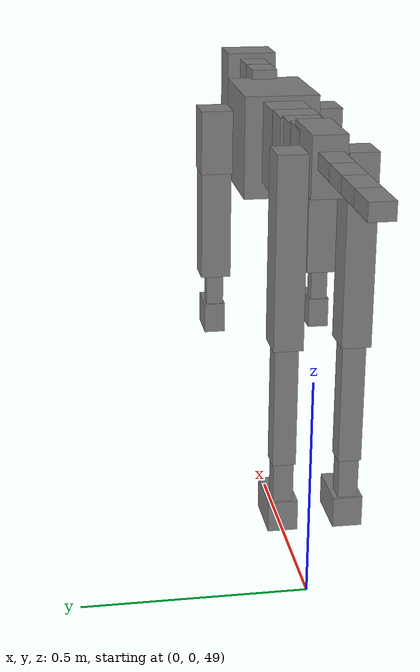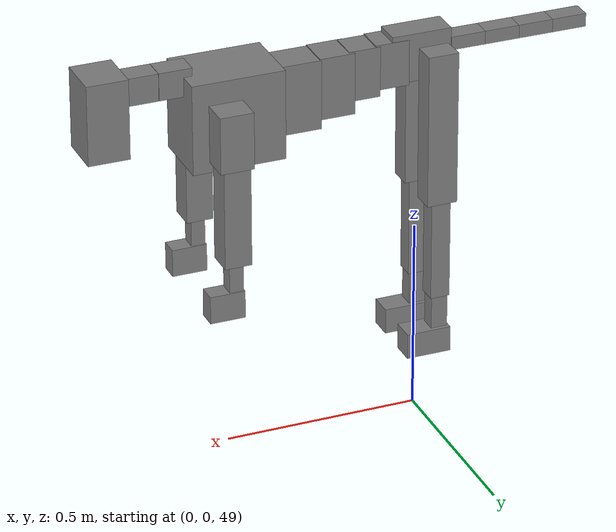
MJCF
<mujoco model="dog">

    <default>
        <joint armature="0.02" stiffness="1" damping="0.2" limited="true"/>
        <geom condim="3" friction="1 0.05 0.05" margin="0.01"/>
        <motor ctrllimited="true" ctrlrange="-1.0 1.0" forcelimited="true" gear="50"/>
    </default>

    <compiler inertiafromgeom="true" angle="radian"/>

    <option timestep="0.016" iterations="50" tolerance="1e-10" solver="Newton" jacobian="dense" cone="pyramidal"/>

    <size nconmax="20000" njmax="60000" nstack="5000000"/>
    <visual>
        <map force="0.1" zfar="30"/>
        <rgba haze="0.15 0.25 0.35 1"/>
        <quality shadowsize="2048"/>
        <global offwidth="800" offheight="800"/>
    </visual>

    <asset>
        <texture type="skybox" builtin="gradient" rgb1="0.3 0.5 0.7" rgb2="0 0 0" width="512" height="512"/>
        <texture name="texplane" type="2d" builtin="checker" rgb1=".2 .3 .4" rgb2=".1 0.15 0.2" width="512" height="512"
                 mark="cross" markrgb=".8 .8 .8"/>
        <texture name="texgeom" type="cube" builtin="flat" mark="cross" width="127" height="1278" rgb1="0.8 0.6 0.4"
                 rgb2="0.8 0.6 0.4" markrgb="1 1 1" random="0.01"/>

        <material name="matplane" reflectance="0.3" texture="texplane" texrepeat="1 1" texuniform="true"/>
        <material name="matgeom" texture="texgeom" texuniform="true" rgba="0.8 0.6 .4 1"/>
    </asset>

    <worldbody>
        <geom name="floor" pos="0 0 0" size="0 0 .25" type="plane" material="matplane" condim="3"/>

        <light directional="false" diffuse=".2 .2 .2" specular="0 0 0" pos="0 0 5" dir="0 0 -1" castshadow="false"/>
        <light mode="targetbodycom" target="torso" directional="false" diffuse=".8 .8 .8" specular="0.3 0.3 0.3"
               pos="0 0 4.0" dir="0 0 -1"/>

        <body name="root" pos="0 0 50">
            <freejoint name="root_1"/>
            <geom type="box" pos="0 0 -0.02" size="0.0774  0.0358  0.063" density="2030"/>

            <body name="spine1" pos="0.054 0 0">
                <joint name="spine1_y" axis="0 1 0" range="0 0.7" limited="true"/>
                <geom type="box" pos="0.02375 0 -0.03" size="0.04375  0.0375  0.05985" density="2030"/>

                <body name="spine2" pos="0.0612 0 0">
                    <joint name="spine2_y" axis="0 1 0" range="-0.15 0.15" limited="true"/>
                    <geom type="box" pos="0.03555  0  -0.04" size="0.04055  0.039  0.06615" density="2030"/>

                    <body name="spine3" pos="0.0730 0 0">
                        <joint name="spine3_y" axis="0 1 0" range="-0.15 0.15" limited="true"/>
                        <geom type="box" pos="0.03555  0  -0.057" size="0.04555  0.0445  0.081" density="2030"/>

                        <body name="spine4" pos="0.0780 0 0">
                            <joint name="spine4_y" axis="0 1 0" range="-0.15 0.15" limited="true"/>
                            <geom type="box" pos="0.05265  0  -0.07" size="0.05265  0.045  0.09135" density="2030"/>

                            <body name="torso" pos="0.1082 0 0">
                                <joint name="torso_y" axis="0 1 0" range="-0.15 0.15" limited="true"/>
                                <geom type="box" pos="0.11925  0  -0.085" size="0.11925  0.085  0.11745"
                                      density="2030"/>

                                <body name="neck1" pos="0.2160  0   0.0180">
                                    <joint name="neck1_y" axis="0 1 0" range="-1.2  -1" limited="true"/>
                                    <geom type="box" pos="0.0423  0  0" size="0.0423  0.03  0.036" density="2325"/>

                                    <body name="neck2" pos="0.0853  0  0">
                                        <joint name="neck2_y" axis="0 1 0" range="0.1  0" limited="true"/>
                                        <geom type="box" pos="0.0423  0  0" size="0.0423  0.03  0.036" density="2325"/>

                                        <body name="head" pos="0.0853  0  0">
                                            <joint name="head_y" axis="0 1 0" range="-0.3  -0.2" limited="true"/>
                                            <geom type="box" pos="0.0531  0  -0.055" size="0.0531  0.06  0.1044"
                                                  density="4030"/>

                                        </body>
                                    </body>
                                </body>

                                <body name="front_shoulder" pos="0.156  0   -0.0480">
                                    <joint name="front_shoulder_y" axis="0 1 0" range="-1 1.5" limited="true"/>
                                    <geom type="box" pos="0 0.13 -0.0476" size="0.0431  0.0369  0.0743" density="1158"/>
                                    <geom type="box" pos="0 -0.13 -0.0476" size="0.0431  0.0369  0.0743"
                                          density="1158"/>

                                    <body name="front_elbow" pos="0  0  -0.0953">
                                        <joint name="front_elbow_y" axis="0 1 0" range="-2 0" limited="true"/>
                                        <geom type="box" pos="0 0.13 -0.1418" size="0.0346  0.0354  0.1418"
                                              density="1081"/>
                                        <geom type="box" pos="0 -0.13 -0.1418" size="0.0346  0.0354  0.1418"
                                              density="1081"/>

                                        <body name="front_wrist" pos="0  0  -0.2837">
                                            <joint name="front_wrist_y" axis="0 1 0" range="-0.2 0" limited="true"/>
                                            <geom type="box" pos="0 0.13 -0.0443" size="0.0182  0.0202  0.0575"
                                                  density="1664"/>
                                            <geom type="box" pos="0 -0.13 -0.0443" size="0.0182  0.0202  0.0575"
                                                  density="1664"/>

                                            <body name="front_finger_end" pos="0  0  -0.0887">
                                                <joint name="front_finger_y" axis="0 1 0" range="-0.4 1"
                                                       limited="true"/>
                                                <geom type="box" pos="0.0246  0.13  -0.0212"
                                                      size="0.0452  0.0246  0.0362" density="1515"/>
                                                <geom type="box" pos="0.0246  -0.13  -0.0212"
                                                      size="0.0452  0.0246  0.0362" density="1515"/>

                                            </body>

                                        </body>
                                    </body>
                                </body>

                            </body>
                        </body>
                    </body>
                </body>
            </body>

            <body name="back_hip" pos="-0.03 0 -0.018">
                <joint name="back_hip_y" axis="0 1 0" range="-1.5 0.3" limited="true"/>
                <geom type="box" pos="0 0.07 -0.1789" size="0.0393  0.0309  0.2017" density="1154"/>
                <geom type="box" pos="0 -0.07 -0.1789" size="0.0393  0.0309  0.2017" density="1154"/>

                <body name="back_knee" pos="0  0  -0.3579">
                    <joint name="back_knee_y" axis="0 1 0" range="0 2.8" limited="true"/>
                    <geom type="box" pos="0 0.07 -0.1340" size="0.0250  0.0246  0.1496" density="1227"/>
                    <geom type="box" pos="0 -0.07 -0.1340" size="0.0250  0.0246  0.1496" density="1227"/>

                    <body name="back_ankle" pos="0  0  -0.2681">
                        <joint name="back_ankle_y" axis="0 1 0" range="-2.2 0" limited="true"/>
                        <geom type="box" pos="0 0.07 -0.0583" size="0.0212  0.0212  0.0696" density="1284"/>
                        <geom type="box" pos="0 -0.07 -0.0583" size="0.0212  0.0212  0.0696" density="1284"/>

                        <body name="back_toe_end" pos="0  0  -0.1166">
                            <joint name="back_toe_y" axis="0 1 0" range="-0.4 1" limited="true"/>
                            <geom type="box" pos="0.0315  0.07  -0.0185" size="0.0578  0.0315  0.0335" density="1515"/>
                            <geom type="box" pos="0.0315  -0.07  -0.0185" size="0.0578  0.0315  0.0335" density="1515"/>

                        </body>
                    </body>
                </body>
            </body>

            <body name="tail1" pos="-0.074 0 -0.006">
                <joint name="tail1_y" axis="0 1 0" range="-0.2 0.2" limited="true"/>
                <geom type="box" pos="-0.0536  0  0" size="0.045  0.025  0.0175" density="1587"/>

                <body name="tail2" pos="-0.09 0 0">
                    <joint name="tail2_y" axis="0 1 0" range="-0.2 0.2" limited="true"/>
                    <geom type="box" pos="-0.0536  0  0" size="0.045  0.025  0.0175" density="1587"/>

                    <body name="tail3" pos="-0.09 0 0">
                        <joint name="tail3_y" axis="0 1 0" range="-0.2 0.2" limited="true"/>
                        <geom type="box" pos="-0.0536  0  0" size="0.045  0.025  0.0175" density="1587"/>

                        <body name="tail4" pos="-0.09 0 0">
                            <joint name="tail4_y" axis="0 1 0" range="-0.2 0.2" limited="true"/>
                            <geom type="box" pos="-0.0536  0  0" size="0.045  0.025  0.0175" density="1587"/>

                        </body>
                    </body>
                </body>
            </body>
        </body>
    </worldbody>

    <actuator>
        <motor joint="spine1_y" forcerange="-150 150     "/>
        <motor joint="spine2_y" forcerange="-150 150     "/>
        <motor joint="spine3_y" forcerange="-150 150     "/>
        <motor joint="spine4_y" forcerange="-150 150     "/>
        <motor joint="torso_y" forcerange="-150 150     "/>
        <motor joint="neck1_y" forcerange="-100 100       "/>
        <motor joint="neck2_y" forcerange="-100 100       "/>
        <motor joint="head_y" forcerange="-150 150       "/>
        <motor joint="front_shoulder_y" forcerange="-173.69 172.02"/>
        <motor joint="front_elbow_y" forcerange="-181.32 175.82"/>
        <motor joint="front_wrist_y" forcerange="-56.45 105.28"/>
        <motor joint="front_finger_y" forcerange="-50.09 41.27"/>
        <motor joint="back_hip_y" forcerange="-290.87 320.47"/>
        <motor joint="back_knee_y" forcerange="-262.90 295.44"/>
        <motor joint="back_angle_y" forcerange="-161.37 77.77"/>
        <motor joint="back_toe_y" forcerange="-34.67 137.43"/>
        <motor joint="tail1_y" forcerange="-50 50     "/>
        <motor joint="tail2_y" forcerange="-50 50     "/>
        <motor joint="tail3_y" forcerange="-50 50     "/>
        <motor joint="tail4_y" forcerange="-50 50     "/>
    </actuator>
</mujoco>
